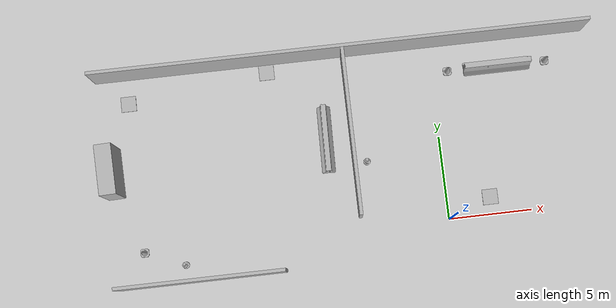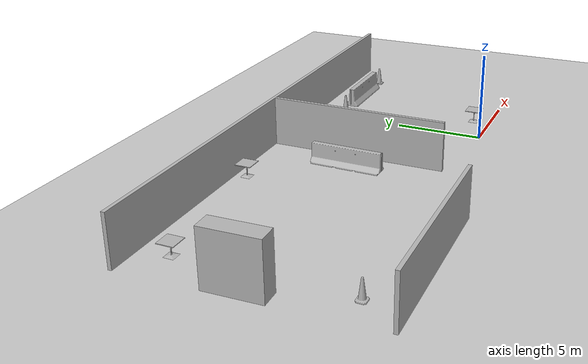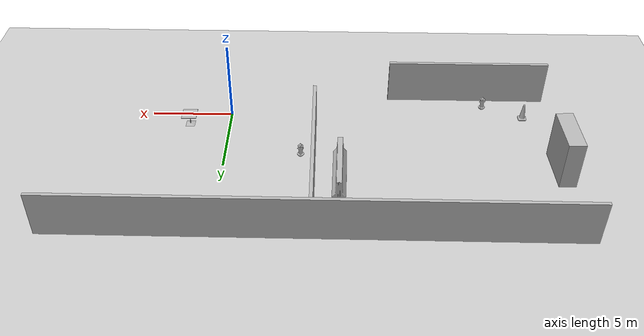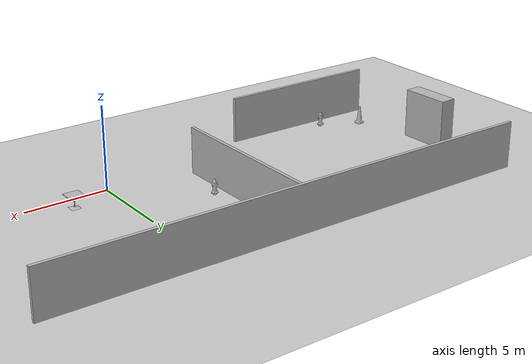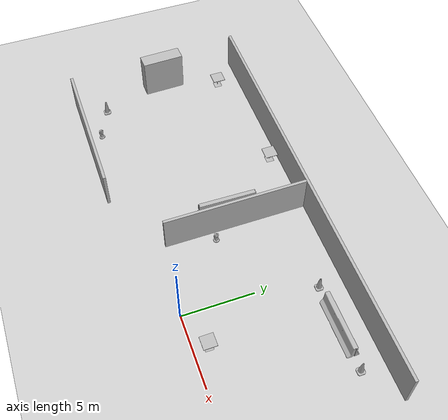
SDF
<sdf version="1.4">
 <world name="default">
  <model name="ground_plane">
   <static>1</static>
   <link name="link">
    <collision name="collision">
     <geometry><plane><normal>0 0 1</normal><size>100 100</size></plane></geometry>
     <surface><friction><ode><mu>100</mu><mu2>50</mu2></ode></friction></surface>
    </collision>
    <visual name="visual">
     <cast_shadows>0</cast_shadows>
     <geometry><plane><normal>0 0 1</normal><size>100 100</size></plane></geometry>
     <material>
      <script><uri>file://media/materials/scripts/gazebo.material</uri><name>Gazebo/Grey</name></script>
     </material>
    </visual>
    <velocity_decay><linear>0</linear><angular>0</angular></velocity_decay>
   </link>
  </model>
  <model name="house">
   <static>1</static>
   <link name="link">
    <pose>0 0 1.4 0 -0 0</pose>
    <collision name="collision"><geometry><box><size>30 0.2 2.8</size></box></geometry></collision>
    <visual name="visual">
     <cast_shadows>0</cast_shadows>
     <geometry><box><size>30 0.2 2.8</size></box></geometry>
     <material>
      <script>
       <uri>model://house/materials/scripts</uri>
       <uri>model://house/materials/textures</uri>
       <name>vrc/house_wall2</name>
      </script>
     </material>
    </visual>
    <velocity_decay><linear>0</linear><angular>0</angular></velocity_decay>
   </link>
   <pose>-5.52092 10.7279 0 0 -0 0</pose>
  </model>
  <model name="house_5">
   <static>1</static>
   <link name="link">
    <pose>0 0 1.4 0 -0 0</pose>
    <collision name="collision"><geometry><box><size>10 0.2 2.8</size></box></geometry></collision>
    <visual name="visual">
     <cast_shadows>0</cast_shadows>
     <geometry><box><size>10 0.2 2.8</size></box></geometry>
     <material>
      <script>
       <uri>model://house/materials/scripts</uri>
       <uri>model://house/materials/textures</uri>
       <name>vrc/house_wall7</name>
      </script>
     </material>
    </visual>
    <velocity_decay><linear>0</linear><angular>0</angular></velocity_decay>
   </link>
   <pose>-15 -2 0 0 -0 0</pose>
  </model>
  <model name="house_7">
   <static>1</static>
   <link name="link">
    <pose>0 0 1.4 0 -0 0</pose>
    <collision name="collision"><geometry><box><size>10 0.2 2.8</size></box></geometry></collision>
    <visual name="visual">
     <cast_shadows>0</cast_shadows>
     <geometry><box><size>10 0.2 2.8</size></box></geometry>
     <material>
      <script>
       <uri>model://house/materials/scripts</uri>
       <uri>model://house/materials/textures</uri>
       <name>vrc/house_wall8</name>
      </script>
     </material>
    </visual>
    <velocity_decay><linear>0</linear><angular>0</angular></velocity_decay>
   </link>
   <pose>-5.32065 5.64854 0 0 0 -1.56856</pose>
  </model>
  <model name="cafe_table">
   <static>1</static>
   <link name="link">
    <collision name="surface">
     <pose>0 0 0.755 0 -0 0</pose>
     <geometry><box><size>0.913 0.913 0.04</size></box></geometry>
    </collision>
    <collision name="column">
     <pose>0 0 0.37 0 -0 0</pose>
     <geometry><box><size>0.042 0.042 0.74</size></box></geometry>
    </collision>
    <collision name="base">
     <pose>0 0 0.02 0 -0 0</pose>
     <geometry><box><size>0.56 0.56 0.04</size></box></geometry>
    </collision>
    <visual name="visual">
     <geometry><mesh><uri>model://cafe_table/meshes/cafe_table.dae</uri></mesh></geometry>
    </visual>
    <velocity_decay><linear>0</linear><angular>0</angular></velocity_decay>
   </link>
   <pose>-18.4767 9 0 0 -0 0</pose>
  </model>
  <model name="Construction Cone_1">
   <link name="link">
    <collision name="collision">
     <geometry>
      <mesh><scale>10 10 10</scale><uri>model://construction_cone/meshes/construction_cone.dae</uri></mesh>
     </geometry>
    </collision>
    <visual name="visual">
     <geometry>
      <mesh><scale>10 10 10</scale><uri>model://construction_cone/meshes/construction_cone.dae</uri></mesh>
     </geometry>
    </visual>
    <velocity_decay><linear>0</linear><angular>0</angular></velocity_decay>
    <inertial>
     <inertia><ixx>1</ixx><ixy>0</ixy><ixz>0</ixz><iyy>1</iyy><iyz>0</iyz><izz>1</izz></inertia>
     <mass>1</mass>
    </inertial>
   </link>
   <pose>7 9 0 1e-06 -0 0</pose>
   <static>0</static>
  </model>
  <model name="Construction Cone_2">
   <link name="link">
    <collision name="collision">
     <geometry>
      <mesh><scale>10 10 10</scale><uri>model://construction_cone/meshes/construction_cone.dae</uri></mesh>
     </geometry>
    </collision>
    <visual name="visual">
     <geometry>
      <mesh><scale>10 10 10</scale><uri>model://construction_cone/meshes/construction_cone.dae</uri></mesh>
     </geometry>
    </visual>
    <velocity_decay><linear>0</linear><angular>0</angular></velocity_decay>
    <inertial>
     <inertia><ixx>1</ixx><ixy>0</ixy><ixz>0</ixz><iyy>1</iyy><iyz>0</iyz><izz>1</izz></inertia>
     <mass>1</mass>
    </inertial>
   </link>
   <pose>-18.4199 -0 0 0 2e-06 0</pose>
   <static>0</static>
  </model>
  <model name="coke_can">
   <link name="link">
    <inertial>
     <pose>-0.01 -0.012 0.15 0 -0 0</pose>
     <mass>0.39</mass>
     <inertia><ixx>0.00058</ixx><ixy>0</ixy><ixz>0</ixz><iyy>0.00058</iyy><iyz>0</iyz><izz>0.00019</izz></inertia>
    </inertial>
    <collision name="collision">
     <pose>0 0 -0.46 0 -0 0</pose>
     <geometry><mesh><uri>model://coke_can/meshes/coke_can.dae</uri></mesh></geometry>
     <surface>
      <friction><ode><mu>1</mu><mu2>1</mu2></ode></friction>
      <contact><ode><kp>1e+07</kp><kd>1</kd><min_depth>0.001</min_depth><max_vel>0.1</max_vel></ode></contact>
     </surface>
    </collision>
    <visual name="visual">
     <pose>0 0 -0.46 0 -0 0</pose>
     <geometry><mesh><uri>model://coke_can/meshes/coke_can.dae</uri></mesh></geometry>
    </visual>
    <velocity_decay><linear>0</linear><angular>0</angular></velocity_decay>
   </link>
   <pose>-19 8.99973 -0.004902 -0.064484 0.00125 -0.000123</pose>
   <static>0</static>
  </model>
  <model name="coke_can_1">
   <link name="link">
    <inertial>
     <pose>-0.01 -0.012 0.15 0 -0 0</pose>
     <mass>0.39</mass>
     <inertia><ixx>0.00058</ixx><ixy>0</ixy><ixz>0</ixz><iyy>0.00058</iyy><iyz>0</iyz><izz>0.00019</izz></inertia>
    </inertial>
    <collision name="collision">
     <pose>0 0 -0.46 0 -0 0</pose>
     <geometry><mesh><uri>model://coke_can/meshes/coke_can.dae</uri></mesh></geometry>
     <surface>
      <friction><ode><mu>1</mu><mu2>1</mu2></ode></friction>
      <contact><ode><kp>1e+07</kp><kd>1</kd><min_depth>0.001</min_depth><max_vel>0.1</max_vel></ode></contact>
     </surface>
    </collision>
    <visual name="visual">
     <pose>0 0 -0.46 0 -0 0</pose>
     <geometry><mesh><uri>model://coke_can/meshes/coke_can.dae</uri></mesh></geometry>
    </visual>
    <velocity_decay><linear>0</linear><angular>0</angular></velocity_decay>
   </link>
   <pose>-18 8.99973 -0.004903 -0.06441 0.001301 -0.000118</pose>
   <static>0</static>
  </model>
  <model name="cafe_table_1">
   <static>1</static>
   <link name="link">
    <collision name="surface">
     <pose>0 0 0.755 0 -0 0</pose>
     <geometry><box><size>0.913 0.913 0.04</size></box></geometry>
    </collision>
    <collision name="column">
     <pose>0 0 0.37 0 -0 0</pose>
     <geometry><box><size>0.042 0.042 0.74</size></box></geometry>
    </collision>
    <collision name="base">
     <pose>0 0 0.02 0 -0 0</pose>
     <geometry><box><size>0.56 0.56 0.04</size></box></geometry>
    </collision>
    <visual name="visual">
     <geometry><mesh><uri>model://cafe_table/meshes/cafe_table.dae</uri></mesh></geometry>
    </visual>
    <velocity_decay><linear>0</linear><angular>0</angular></velocity_decay>
   </link>
   <pose>2.50144 1 0 0 -0 0</pose>
  </model>
  <model name="fire_hydrant_0">
   <static>1</static>
   <link name="link">
    <collision name="collision">
     <geometry><mesh><uri>model://fire_hydrant/meshes/fire_hydrant.dae</uri></mesh></geometry>
    </collision>
    <visual name="visual">
     <geometry><mesh><uri>model://fire_hydrant/meshes/fire_hydrant.dae</uri></mesh></geometry>
    </visual>
    <velocity_decay><linear>0</linear><angular>0</angular></velocity_decay>
   </link>
   <pose>-4.534 3.98558 0 0 -0 0</pose>
  </model>
  <model name="fire_hydrant_1">
   <static>1</static>
   <link name="link">
    <collision name="collision">
     <geometry><mesh><uri>model://fire_hydrant/meshes/fire_hydrant.dae</uri></mesh></geometry>
    </collision>
    <visual name="visual">
     <geometry><mesh><uri>model://fire_hydrant/meshes/fire_hydrant.dae</uri></mesh></geometry>
    </visual>
    <velocity_decay><linear>0</linear><angular>0</angular></velocity_decay>
   </link>
   <pose>-16 -1 0 0 -0 0</pose>
  </model>
  <model name="coke_can_5">
   <link name="link">
    <inertial>
     <pose>-0.01 -0.012 0.15 0 -0 0</pose>
     <mass>0.39</mass>
     <inertia><ixx>0.00058</ixx><ixy>0</ixy><ixz>0</ixz><iyy>0.00058</iyy><iyz>0</iyz><izz>0.00019</izz></inertia>
    </inertial>
    <collision name="collision">
     <pose>0 0 -0.46 0 -0 0</pose>
     <geometry><mesh><uri>model://coke_can/meshes/coke_can.dae</uri></mesh></geometry>
     <surface>
      <friction><ode><mu>1</mu><mu2>1</mu2></ode></friction>
      <contact><ode><kp>1e+07</kp><kd>1</kd><min_depth>0.001</min_depth><max_vel>0.1</max_vel></ode></contact>
     </surface>
    </collision>
    <visual name="visual">
     <pose>0 0 -0.46 0 -0 0</pose>
     <geometry><mesh><uri>model://coke_can/meshes/coke_can.dae</uri></mesh></geometry>
    </visual>
    <velocity_decay><linear>0</linear><angular>0</angular></velocity_decay>
   </link>
   <pose>3 0.999739 -0.004912 -0.06368 0.001807 -5.4e-05</pose>
   <static>0</static>
  </model>
  <model name="coke_can_6">
   <link name="link">
    <inertial>
     <pose>-0.01 -0.012 0.15 0 -0 0</pose>
     <mass>0.39</mass>
     <inertia><ixx>0.00058</ixx><ixy>0</ixy><ixz>0</ixz><iyy>0.00058</iyy><iyz>0</iyz><izz>0.00019</izz></inertia>
    </inertial>
    <collision name="collision">
     <pose>0 0 -0.46 0 -0 0</pose>
     <geometry><mesh><uri>model://coke_can/meshes/coke_can.dae</uri></mesh></geometry>
     <surface>
      <friction><ode><mu>1</mu><mu2>1</mu2></ode></friction>
      <contact><ode><kp>1e+07</kp><kd>1</kd><min_depth>0.001</min_depth><max_vel>0.1</max_vel></ode></contact>
     </surface>
    </collision>
    <visual name="visual">
     <pose>0 0 -0.46 0 -0 0</pose>
     <geometry><mesh><uri>model://coke_can/meshes/coke_can.dae</uri></mesh></geometry>
    </visual>
    <velocity_decay><linear>0</linear><angular>0</angular></velocity_decay>
   </link>
   <pose>3 0.584361 -0.004911 -0.063781 0.001738 -0.000116</pose>
   <static>0</static>
  </model>
  <model name="jersey_barrier">
   <static>1</static>
   <link name="link">
    <visual name="visual">
     <geometry><mesh><uri>model://jersey_barrier/meshes/jersey_barrier.dae</uri></mesh></geometry>
    </visual>
    <collision name="upright">
     <pose>0 0 0.5715 0 -0 0</pose>
     <geometry><box><size>4.06542 0.3063 1.143</size></box></geometry>
    </collision>
    <collision name="base">
     <pose>0 0 0.032258 0 -0 0</pose>
     <geometry><box><size>4.06542 0.8107 0.064516</size></box></geometry>
    </collision>
    <collision name="base2">
     <pose>0 0 0.1 0 -0 0</pose>
     <geometry><box><size>4.06542 0.65 0.1</size></box></geometry>
    </collision>
    <collision name="base3">
     <pose>0 0 0.2 0 -0 0</pose>
     <geometry><box><size>4.06542 0.5 0.1</size></box></geometry>
    </collision>
    <collision name="left-angle">
     <pose>0 -0.224 0.2401 0.9 -0 0</pose>
     <geometry><box><size>4.06542 0.5 0.064516</size></box></geometry>
    </collision>
    <collision name="right-angle">
     <pose>0 0.224 0.2401 -0.9 0 0</pose>
     <geometry><box><size>4.06542 0.5 0.064516</size></box></geometry>
    </collision>
    <velocity_decay><linear>0</linear><angular>0</angular></velocity_decay>
   </link>
   <pose>4 9 0 0 -0 0</pose>
  </model>
  <model name="Construction Cone_5">
   <link name="link">
    <collision name="collision">
     <geometry>
      <mesh><scale>10 10 10</scale><uri>model://construction_cone/meshes/construction_cone.dae</uri></mesh>
     </geometry>
    </collision>
    <visual name="visual">
     <geometry>
      <mesh><scale>10 10 10</scale><uri>model://construction_cone/meshes/construction_cone.dae</uri></mesh>
     </geometry>
    </visual>
    <velocity_decay><linear>0</linear><angular>0</angular></velocity_decay>
    <inertial>
     <inertia><ixx>1</ixx><ixy>0</ixy><ixz>0</ixz><iyy>1</iyy><iyz>0</iyz><izz>1</izz></inertia>
     <mass>1</mass>
    </inertial>
   </link>
   <pose>1 9 -9e-06 1e-06 1e-06 0</pose>
   <static>0</static>
  </model>
  <model name="brick_box_3x1x3">
   <static>1</static>
   <link name="chassis">
    <pose>0 0 1.5 0 -0 0</pose>
    <collision name="collision"><geometry><box><size>3 1 3</size></box></geometry></collision>
    <visual name="visual">
     <geometry><mesh><uri>model://brick_box_3x1x3/meshes/simple_box.dae</uri><scale>3 1 3</scale></mesh></geometry>
     <material>
      <script>
       <uri>model://brick_box_3x1x3/materials/scripts</uri>
       <uri>model://brick_box_3x1x3/materials/textures</uri>
       <name>BrickBox/Diffuse</name>
      </script>
     </material>
    </visual>
    <velocity_decay><linear>0</linear><angular>0</angular></velocity_decay>
   </link>
   <pose>-19.8069 4.9145 0 0 0 -1.54197</pose>
  </model>
  <model name="cafe_table_3">
   <static>1</static>
   <link name="link">
    <collision name="surface">
     <pose>0 0 0.755 0 -0 0</pose>
     <geometry><box><size>0.913 0.913 0.04</size></box></geometry>
    </collision>
    <collision name="column">
     <pose>0 0 0.37 0 -0 0</pose>
     <geometry><box><size>0.042 0.042 0.74</size></box></geometry>
    </collision>
    <collision name="base">
     <pose>0 0 0.02 0 -0 0</pose>
     <geometry><box><size>0.56 0.56 0.04</size></box></geometry>
    </collision>
    <visual name="visual">
     <geometry><mesh><uri>model://cafe_table/meshes/cafe_table.dae</uri></mesh></geometry>
    </visual>
    <velocity_decay><linear>0</linear><angular>0</angular></velocity_decay>
   </link>
   <pose>-10 10 0 0 -0 0</pose>
  </model>
  <model name="jersey_barrier_0">
   <static>1</static>
   <link name="link">
    <visual name="visual">
     <geometry><mesh><uri>model://jersey_barrier/meshes/jersey_barrier.dae</uri></mesh></geometry>
    </visual>
    <collision name="upright">
     <pose>0 0 0.5715 0 -0 0</pose>
     <geometry><box><size>4.06542 0.3063 1.143</size></box></geometry>
    </collision>
    <collision name="base">
     <pose>0 0 0.032258 0 -0 0</pose>
     <geometry><box><size>4.06542 0.8107 0.064516</size></box></geometry>
    </collision>
    <collision name="base2">
     <pose>0 0 0.1 0 -0 0</pose>
     <geometry><box><size>4.06542 0.65 0.1</size></box></geometry>
    </collision>
    <collision name="base3">
     <pose>0 0 0.2 0 -0 0</pose>
     <geometry><box><size>4.06542 0.5 0.1</size></box></geometry>
    </collision>
    <collision name="left-angle">
     <pose>0 -0.224 0.2401 0.9 -0 0</pose>
     <geometry><box><size>4.06542 0.5 0.064516</size></box></geometry>
    </collision>
    <collision name="right-angle">
     <pose>0 0.224 0.2401 -0.9 0 0</pose>
     <geometry><box><size>4.06542 0.5 0.064516</size></box></geometry>
    </collision>
    <velocity_decay><linear>0</linear><angular>0</angular></velocity_decay>
   </link>
   <pose>-6.85552 5.60335 0 0 0 -1.58903</pose>
  </model>
 </world>
</sdf>
